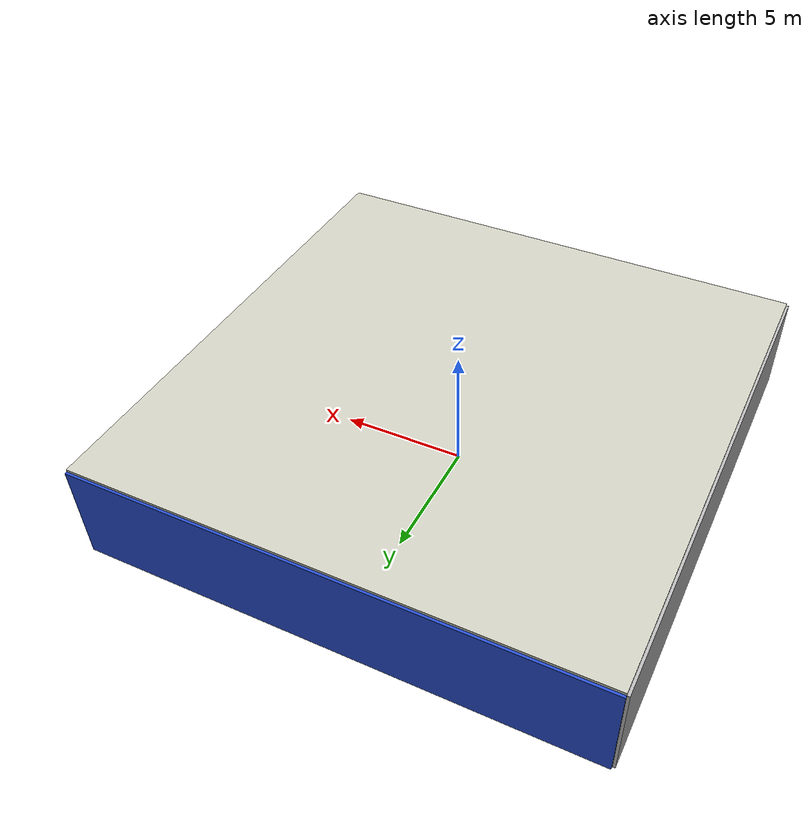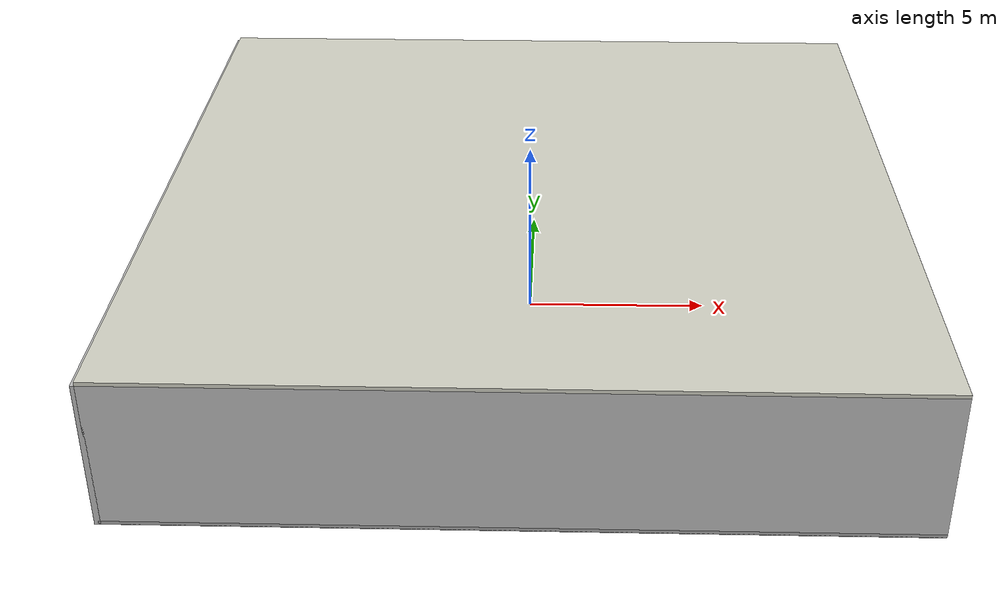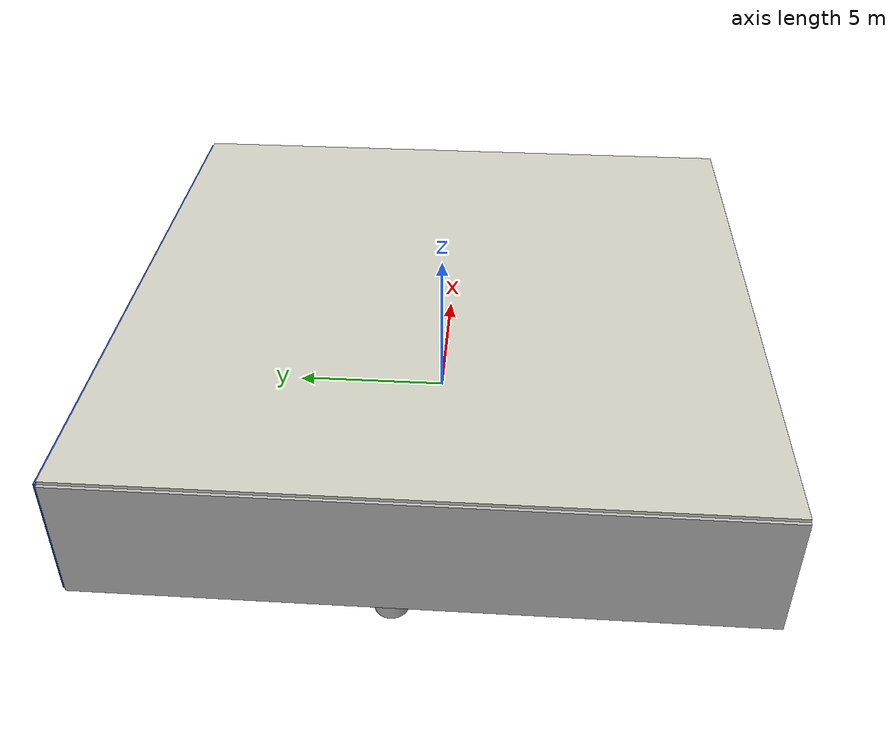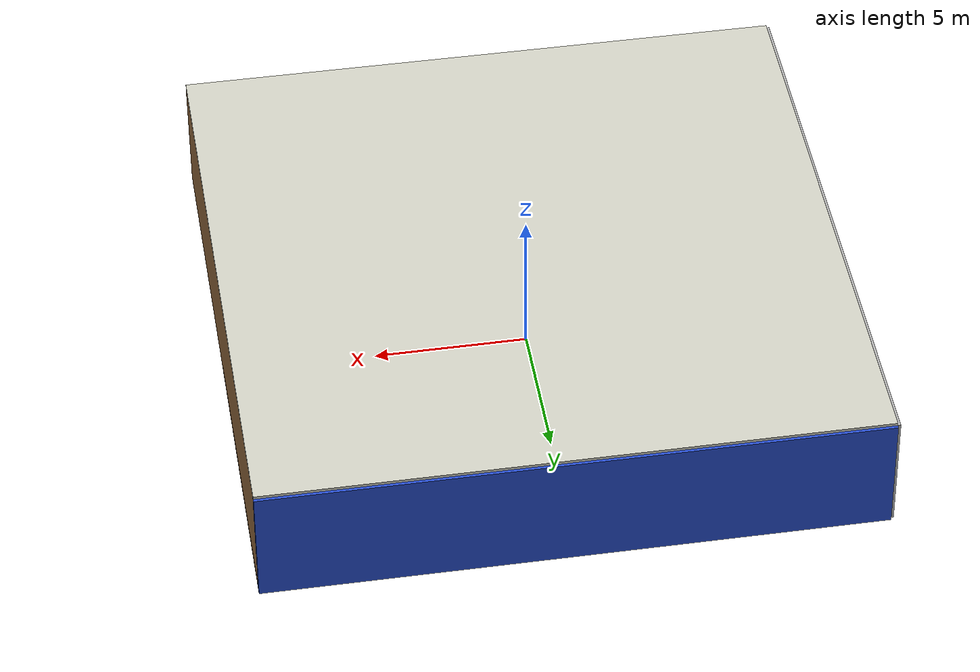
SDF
<sdf version="1.4">
 <world name="default">
  <physics type="ode">
   <max_step_size>0.001</max_step_size>
   <real_time_factor>1</real_time_factor>
   <real_time_update_rate>1000</real_time_update_rate>
   <gravity>0 0 -9.8</gravity>
  </physics>
  <scene><ambient>0.4 0.4 0.4 1</ambient><background>0.7 0.7 0.7 1</background><shadows>1</shadows></scene>
  <model name="Surrounding">
   <static>1</static>
   <link name="Ceiling">
    <collision name="Ceiling_Collision"><geometry><box><size>20 20 0.1</size></box></geometry></collision>
    <visual name="Ceiling_Visual">
     <geometry><box><size>20 20 0.1</size></box></geometry>
     <material>
      <script><uri>file://media/materials/scripts/gazebo.material</uri><name>Gazebo/PaintedWall</name></script>
     </material>
    </visual>
    <pose>0 0 4.05 0 0 0</pose>
   </link>
   <link name="Wall_South">
    <collision name="Wall_South_Collision">
     <geometry><box><size>20 0 4</size></box></geometry>
     <pose>0 0 2 0 -0 0</pose>
    </collision>
    <visual name="Wall_South_Visual">
     <pose>0 0 2 0 -0 0</pose>
     <geometry><box><size>20 0 4</size></box></geometry>
     <material>
      <script><uri>file://media/materials/scripts/gazebo.material</uri><name>Gazebo/Pioneer2Body</name></script>
     </material>
    </visual>
    <velocity_decay><linear>0</linear><angular>0</angular></velocity_decay>
    <pose>0 -10 0 0 -0 0</pose>
   </link>
   <link name="Wall_East">
    <collision name="Wall_21_Collision">
     <geometry><box><size>20 0 4</size></box></geometry>
     <pose>0 0 2 0 -0 0</pose>
    </collision>
    <visual name="Wall_21_Visual">
     <pose>0 0 2 0 -0 0</pose>
     <geometry><box><size>20 0 4</size></box></geometry>
     <material>
      <script><uri>file://media/materials/scripts/gazebo.material</uri><name>Gazebo/WoodFloor</name></script>
     </material>
    </visual>
    <velocity_decay><linear>0</linear><angular>0</angular></velocity_decay>
    <pose>10 0 0 0 -0 1.5708</pose>
   </link>
   <link name="Wall_North">
    <collision name="Wall_22_Collision">
     <geometry><box><size>20 0.2 4</size></box></geometry>
     <pose>0 0 2 0 -0 0</pose>
    </collision>
    <visual name="Wall_22_Visual">
     <pose>0 0 2 0 -0 0</pose>
     <geometry><box><size>20 0.2 4</size></box></geometry>
     <material>
      <script><uri>file://media/materials/scripts/gazebo.material</uri><name>Gazebo/Blue</name></script>
     </material>
    </visual>
    <velocity_decay><linear>0</linear><angular>0</angular></velocity_decay>
    <pose>0 10 0 0 -0 0</pose>
   </link>
   <link name="Wall_West">
    <collision name="Wall_23_Collision">
     <geometry><box><size>20 0.2 4</size></box></geometry>
     <pose>0 0 2 0 -0 0</pose>
    </collision>
    <visual name="Wall_23_Visual">
     <pose>0 0 2 0 -0 0</pose>
     <geometry><box><size>20 0.2 4</size></box></geometry>
     <material>
      <script><uri>file://media/materials/scripts/gazebo.material</uri><name>Gazebo/LightOn</name></script>
     </material>
    </visual>
    <velocity_decay><linear>0</linear><angular>0</angular></velocity_decay>
    <pose>-10 0 0 0 0 -1.5708</pose>
   </link>
   <link name="Ground_link">
    <collision name="collision">
     <pose>0 0 .05 0 -0 0</pose>
     <geometry><box><size>20 20 0.1</size></box></geometry>
    </collision>
    <visual name="visual">
     <pose>0 0 .05 0 -0 0</pose>
     <geometry><box><size>20 20 0.1</size></box></geometry>
     <material>
      <script><uri>file://media/materials/scripts/gazebo.material</uri><name>Gazebo/GreyTransparent</name></script>
     </material>
    </visual>
   </link>
   <static>1</static>
  </model>
  <spherical_coordinates>
   <surface_model>EARTH_WGS84</surface_model>
   <latitude_deg>0</latitude_deg>
   <longitude_deg>0</longitude_deg>
   <elevation>0</elevation>
   <heading_deg>0</heading_deg>
  </spherical_coordinates>
  <light name="lightball_0" type="diffuse">
   <diffuse>0.8 0.8 0.8 1</diffuse>
   <specular>0.2 0.2 0.2 1</specular>
   <attenuation>
    <range>100</range>
    <constant>0.7</constant>
    <linear>0.01</linear>
    <quadratic>0.001</quadratic>
   </attenuation>
   <direction>-0.5 0.1 -0.9</direction>
   <pose>-0.363760683277 -4.52852831838 1.54173577577 0 0 0</pose>
  </light>
  <light name="lightball_1" type="diffuse">
   <diffuse>0.8 0.8 0.8 1</diffuse>
   <specular>0.2 0.2 0.2 1</specular>
   <attenuation>
    <range>100</range>
    <constant>0.7</constant>
    <linear>0.01</linear>
    <quadratic>0.001</quadratic>
   </attenuation>
   <direction>-0.5 0.1 -0.9</direction>
   <pose>-1.44365556338 8.44990198244 0.929321581804 0 0 0</pose>
  </light>
  <light name="lightball_2" type="diffuse">
   <diffuse>0.8 0.8 0.8 1</diffuse>
   <specular>0.2 0.2 0.2 1</specular>
   <attenuation>
    <range>100</range>
    <constant>0.7</constant>
    <linear>0.01</linear>
    <quadratic>0.001</quadratic>
   </attenuation>
   <direction>-0.5 0.1 -0.9</direction>
   <pose>4.64524989165 -7.46915905002 3.15887033445 0 0 0</pose>
  </light>
  <light name="lightball_3" type="diffuse">
   <diffuse>0.8 0.8 0.8 1</diffuse>
   <specular>0.2 0.2 0.2 1</specular>
   <attenuation>
    <range>100</range>
    <constant>0.7</constant>
    <linear>0.01</linear>
    <quadratic>0.001</quadratic>
   </attenuation>
   <direction>-0.5 0.1 -0.9</direction>
   <pose>-7.07644667995 1.23054153907 3.45797828346 0 0 0</pose>
  </light>
  <light name="lightball_4" type="diffuse">
   <diffuse>0.8 0.8 0.8 1</diffuse>
   <specular>0.2 0.2 0.2 1</specular>
   <attenuation>
    <range>100</range>
    <constant>0.7</constant>
    <linear>0.01</linear>
    <quadratic>0.001</quadratic>
   </attenuation>
   <direction>-0.5 0.1 -0.9</direction>
   <pose>-0.396975707588 8.96343428287 2.44282593948 0 0 0</pose>
  </light>
  <light name="lightball_5" type="diffuse">
   <diffuse>0.8 0.8 0.8 1</diffuse>
   <specular>0.2 0.2 0.2 1</specular>
   <attenuation>
    <range>100</range>
    <constant>0.7</constant>
    <linear>0.01</linear>
    <quadratic>0.001</quadratic>
   </attenuation>
   <direction>-0.5 0.1 -0.9</direction>
   <pose>-3.1727309887 5.61785018756 3.33419654565 0 0 0</pose>
  </light>
  <light name="lightball_6" type="diffuse">
   <diffuse>0.8 0.8 0.8 1</diffuse>
   <specular>0.2 0.2 0.2 1</specular>
   <attenuation>
    <range>100</range>
    <constant>0.7</constant>
    <linear>0.01</linear>
    <quadratic>0.001</quadratic>
   </attenuation>
   <direction>-0.5 0.1 -0.9</direction>
   <pose>-6.72741213477 -3.33123714286 3.34099224472 0 0 0</pose>
  </light>
  <light name="lightball_7" type="diffuse">
   <diffuse>0.8 0.8 0.8 1</diffuse>
   <specular>0.2 0.2 0.2 1</specular>
   <attenuation>
    <range>100</range>
    <constant>0.7</constant>
    <linear>0.01</linear>
    <quadratic>0.001</quadratic>
   </attenuation>
   <direction>-0.5 0.1 -0.9</direction>
   <pose>-5.64252357487 -8.95151819064 0.965136122923 0 0 0</pose>
  </light>
  <light name="lightball_8" type="diffuse">
   <diffuse>0.8 0.8 0.8 1</diffuse>
   <specular>0.2 0.2 0.2 1</specular>
   <attenuation>
    <range>100</range>
    <constant>0.7</constant>
    <linear>0.01</linear>
    <quadratic>0.001</quadratic>
   </attenuation>
   <direction>-0.5 0.1 -0.9</direction>
   <pose>-4.10625179115 -4.42528616023 3.30822309363 0 0 0</pose>
  </light>
  <light name="lightball_9" type="diffuse">
   <diffuse>0.8 0.8 0.8 1</diffuse>
   <specular>0.2 0.2 0.2 1</specular>
   <attenuation>
    <range>100</range>
    <constant>0.7</constant>
    <linear>0.01</linear>
    <quadratic>0.001</quadratic>
   </attenuation>
   <direction>-0.5 0.1 -0.9</direction>
   <pose>-9.16826199146 -8.27428314775 2.700885182 0 0 0</pose>
  </light>
  <light name="lightball_10" type="diffuse">
   <diffuse>0.8 0.8 0.8 1</diffuse>
   <specular>0.2 0.2 0.2 1</specular>
   <attenuation>
    <range>100</range>
    <constant>0.7</constant>
    <linear>0.01</linear>
    <quadratic>0.001</quadratic>
   </attenuation>
   <direction>-0.5 0.1 -0.9</direction>
   <pose>1.08550234209 -7.09589289477 2.29875601559 0 0 0</pose>
  </light>
  <light name="lightball_11" type="diffuse">
   <diffuse>0.8 0.8 0.8 1</diffuse>
   <specular>0.2 0.2 0.2 1</specular>
   <attenuation>
    <range>100</range>
    <constant>0.7</constant>
    <linear>0.01</linear>
    <quadratic>0.001</quadratic>
   </attenuation>
   <direction>-0.5 0.1 -0.9</direction>
   <pose>8.69471414964 8.33574755346 0.831780512159 0 0 0</pose>
  </light>
  <light name="lightball_12" type="diffuse">
   <diffuse>0.8 0.8 0.8 1</diffuse>
   <specular>0.2 0.2 0.2 1</specular>
   <attenuation>
    <range>100</range>
    <constant>0.7</constant>
    <linear>0.01</linear>
    <quadratic>0.001</quadratic>
   </attenuation>
   <direction>-0.5 0.1 -0.9</direction>
   <pose>-1.03120471798 -6.56860111442 3.40514307188 0 0 0</pose>
  </light>
  <include><uri>model://table</uri><pose>-7.84148450429 -5.30340560675 0 0 0 1.18182616667</pose></include>
  <include>
   <uri>model://textured_shapes</uri>
   <pose>-8.09949572749 0.399685756145 0 0 0 1.30988708402</pose>
  </include>
  <include>
   <uri>model://robocup_3Dsim_goal</uri>
   <pose>-3.71821412714 7.54766132657 0 0 0 1.71897862204</pose>
  </include>
  <include><uri>model://cabinet</uri><pose>-0.664536190239 -5.01280473631 0 0 0 2.33326425793</pose></include>
  <include><uri>model://table</uri><pose>0.634574460819 3.55152395859 0 0 0 2.35623872724</pose></include>
  <include><uri>model://cabinet</uri><pose>6.87013075102 -6.80091883069 0 0 0 0.430352503707</pose></include>
 </world>
</sdf>

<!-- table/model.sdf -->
<sdf version="1.5">
  <model name="table">
    <static>true</static>
    <link name="link">
      <collision name="surface">
        <pose>0 0 1.0 0 0 0</pose>
        <geometry>
          <box>
            <size>1.5 0.8 0.03</size>
          </box>
        </geometry>
        <surface>
          <friction>
            <ode>
              <mu>0.6</mu>
              <mu2>0.6</mu2>
            </ode>
          </friction>
        </surface>
      </collision>
      <visual name="visual1">
        <pose>0 0 1.0 0 0 0</pose>
        <geometry>
          <box>
            <size>1.5 0.8 0.03</size>
          </box>
        </geometry>
        <material>
          <script>
            <uri>model://media/materials/scripts/gazebo.material</uri>
            <name>Gazebo/Wood</name>
          </script>
        </material>
      </visual>
      <collision name="front_left_leg">
        <pose>0.68 0.38 0.5 0 0 0</pose>
        <geometry>
          <cylinder>
            <radius>0.02</radius>
            <length>1.0</length>
          </cylinder>
        </geometry>
      </collision>
      <visual name="front_left_leg">
        <pose>0.68 0.38 0.5 0 0 0</pose>
        <geometry>
          <cylinder>
            <radius>0.02</radius>
            <length>1.0</length>
          </cylinder>
        </geometry>
        <material>
          <script>
            <uri>model://media/materials/scripts/gazebo.material</uri>
            <name>Gazebo/Grey</name>
          </script>
        </material>
      </visual>
      <collision name="front_right_leg">
        <pose>0.68 -0.38 0.5 0 0 0</pose>
        <geometry>
          <cylinder>
            <radius>0.02</radius>
            <length>1.0</length>
          </cylinder>
        </geometry>
      </collision>
      <visual name="front_right_leg">
        <pose>0.68 -0.38 0.5 0 0 0</pose>
        <geometry>
          <cylinder>
            <radius>0.02</radius>
            <length>1.0</length>
          </cylinder>
        </geometry>
        <material>
          <script>
            <uri>model://media/materials/scripts/gazebo.material</uri>
            <name>Gazebo/Grey</name>
          </script>
        </material>
      </visual>
      <collision name="back_right_leg">
        <pose>-0.68 -0.38 0.5 0 0 0</pose>
        <geometry>
          <cylinder>
            <radius>0.02</radius>
            <length>1.0</length>
          </cylinder>
        </geometry>
      </collision>
      <visual name="back_right_leg">
        <pose>-0.68 -0.38 0.5 0 0 0</pose>
        <geometry>
          <cylinder>
            <radius>0.02</radius>
            <length>1.0</length>
          </cylinder>
        </geometry>
        <material>
          <script>
            <uri>model://media/materials/scripts/gazebo.material</uri>
            <name>Gazebo/Grey</name>
          </script>
        </material>
      </visual>
      <collision name="back_left_leg">
        <pose>-0.68 0.38 0.5 0 0 0</pose>
        <geometry>
          <cylinder>
            <radius>0.02</radius>
            <length>1.0</length>
          </cylinder>
        </geometry>
      </collision>
      <visual name="back_left_leg">
        <pose>-0.68 0.38 0.5 0 0 0</pose>
        <geometry>
          <cylinder>
            <radius>0.02</radius>
            <length>1.0</length>
          </cylinder>
        </geometry>
        <material>
          <script>
            <uri>model://media/materials/scripts/gazebo.material</uri>
            <name>Gazebo/Grey</name>
          </script>
        </material>
      </visual>
    </link>
  </model>
</sdf>

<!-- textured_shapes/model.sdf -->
<sdf version="1.6">
  <model name="textured_shapes">
    <pose>0 0 0.5 0 0 0</pose>
    <link name="box">
      <pose>0 -1.5 0 0 0 0</pose>
      <collision name="collision">
        <geometry>
          <box>
            <size>1 1 1</size>
          </box>
        </geometry>
      </collision>
      <visual name="visual">
        <geometry>
          <box>
            <size>1 1 1</size>
          </box>
        </geometry>
        <material>
          <script>
            <uri>model://../model_source/models/textured_shapes/materials/scripts</uri>
            <uri>model://../model_source/models/textured_shapes/materials/textures</uri>
            <name>TexturedShape/Squares</name>
          </script>
        </material>
      </visual>
    </link>
    <link name="sphere">
      <collision name="collision">
        <geometry>
          <sphere>
            <radius>0.5</radius>
          </sphere>
        </geometry>
      </collision>
      <visual name="visual">
        <geometry>
          <sphere>
            <radius>0.5</radius>
          </sphere>
        </geometry>
        <material>
          <script>
            <uri>model://../model_source/models/textured_shapes/materials/scripts</uri>
            <uri>model://../model_source/models/textured_shapes/materials/textures</uri>
            <name>TexturedShape/Squares</name>
          </script>
        </material>
      </visual>
    </link>
    <link name="cylinder">
      <pose>0 1.5 0 0 0 0</pose>
      <collision name="collision">
        <geometry>
          <cylinder>
            <radius>0.5</radius>
            <length>1</length>
          </cylinder>
        </geometry>
      </collision>
      <visual name="visual">
        <geometry>
          <cylinder>
            <radius>0.5</radius>
            <length>1</length>
          </cylinder>
        </geometry>
        <material>
          <script>
            <uri>model://../model_source/models/textured_shapes/materials/scripts</uri>
            <uri>model://../model_source/models/textured_shapes/materials/textures</uri>
            <name>TexturedShape/Squares</name>
          </script>
        </material>
      </visual>
    </link>
  </model>
</sdf>

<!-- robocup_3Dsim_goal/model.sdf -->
<sdf version="1.5">
  <model name="robocup_3d_goal">
    <static>true</static>
    <link name="left_post">
      <pose>0 1.05 0.45 0 0 0</pose>
      <collision name="collision">
        <geometry>
          <cylinder>
            <radius>0.05</radius>
            <length>0.9</length>
          </cylinder>
        </geometry>
      </collision>
      <visual name="visual">
        <geometry>
          <cylinder>
            <radius>0.05</radius>
            <length>0.9</length>
          </cylinder>
        </geometry>
        <material>
          <script>
            <uri>file://media/materials/scripts/gazebo.material</uri>
            <name>Gazebo/ZincYellow</name>
          </script>
        </material>
      </visual>
    </link>
    <link name="left_support_horiz_lower">
      <pose>0.30 1.05 0.01 0 0 0</pose>
      <collision name="collision">
        <geometry>
          <box>
            <size>0.50 0.02 0.02</size>
          </box>
        </geometry>
      </collision>
      <visual name="visual">
        <geometry>
          <box>
            <size>0.50 0.02 0.02</size>
          </box>
        </geometry>
        <material>
          <script>
            <uri>file://media/materials/scripts/gazebo.material</uri>
            <name>Gazebo/White</name>
          </script>
        </material>
      </visual>
    </link>
    <link name="left_support_horiz_upper">
      <pose>0.30 1.05 0.79 0 0 0</pose>
      <collision name="collision">
        <geometry>
          <box>
            <size>0.50 0.02 0.02</size>
          </box>
        </geometry>
      </collision>
      <visual name="visual">
        <geometry>
          <box>
            <size>0.50 0.02 0.02</size>
          </box>
        </geometry>
        <material>
          <script>
            <uri>file://media/materials/scripts/gazebo.material</uri>
            <name>Gazebo/White</name>
          </script>
        </material>
      </visual>
    </link>
    <link name="left_support_vertical">
      <pose>0.56 1.05 0.4 0 1.5708 0</pose>
      <collision name="collision">
        <geometry>
          <box>
            <size>0.80 0.02 0.02</size>
          </box>
        </geometry>
      </collision>
      <visual name="visual">
        <geometry>
          <box>
            <size>0.80 0.02 0.02</size>
          </box>
        </geometry>
        <material>
          <script>
            <uri>file://media/materials/scripts/gazebo.material</uri>
            <name>Gazebo/White</name>
          </script>
        </material>
      </visual>
    </link>
    <link name="right_support_horiz_lower">
      <pose>0.30 -1.05 0.01 0 0 0</pose>
      <collision name="collision">
        <geometry>
          <box>
            <size>0.50 0.02 0.02</size>
          </box>
        </geometry>
      </collision>
      <visual name="visual">
        <geometry>
          <box>
            <size>0.50 0.02 0.02</size>
          </box>
        </geometry>
        <material>
          <script>
            <uri>file://media/materials/scripts/gazebo.material</uri>
            <name>Gazebo/White</name>
          </script>
        </material>
      </visual>
    </link>
    <link name="right_support_horiz_upper">
      <pose>0.30 -1.05 0.79 0 0 0</pose>
      <collision name="collision">
        <geometry>
          <box>
            <size>0.50 0.02 0.02</size>
          </box>
        </geometry>
      </collision>
      <visual name="visual">
        <geometry>
          <box>
            <size>0.50 0.02 0.02</size>
          </box>
        </geometry>
        <material>
          <script>
            <uri>file://media/materials/scripts/gazebo.material</uri>
            <name>Gazebo/White</name>
          </script>
        </material>
      </visual>
    </link>
    <link name="right_support_vertical">
      <pose>0.56 -1.05 0.4 0 1.5708 0</pose>
      <collision name="collision">
        <geometry>
          <box>
            <size>0.80 0.02 0.02</size>
          </box>
        </geometry>
      </collision>
      <visual name="visual">
        <geometry>
          <box>
            <size>0.80 0.02 0.02</size>
          </box>
        </geometry>
        <material>
          <script>
            <uri>file://media/materials/scripts/gazebo.material</uri>
            <name>Gazebo/White</name>
          </script>
        </material>
      </visual>
    </link>
    <link name="center_support_horiz_lower">
      <pose>0.56 0 0.01 0 1.5708 0</pose>
      <collision name="collision">
        <geometry>
          <box>
            <size>0.02 2.08 0.02</size>
          </box>
        </geometry>
      </collision>
      <visual name="visual">
        <geometry>
          <box>
            <size>0.02 2.08 0.02</size>
          </box>
        </geometry>
        <material>
          <script>
            <uri>file://media/materials/scripts/gazebo.material</uri>
            <name>Gazebo/White</name>
          </script>
        </material>
      </visual>
    </link>
    <link name="center_support_horiz_upper">
      <pose>0.56 0 0.79 0 1.5708 0</pose>
      <collision name="collision">
        <geometry>
          <box>
            <size>0.02 2.08 0.02</size>
          </box>
        </geometry>
      </collision>
      <visual name="visual">
        <geometry>
          <box>
            <size>0.02 2.08 0.02</size>
          </box>
        </geometry>
        <material>
          <script>
            <uri>file://media/materials/scripts/gazebo.material</uri>
            <name>Gazebo/White</name>
          </script>
        </material>
      </visual>
    </link>
    <link name="right_post">
      <pose>0 -1.05 0.45 0 0 0</pose>
      <collision name="collision">
        <geometry>
          <cylinder>
            <radius>0.05</radius>
            <length>0.9</length>
          </cylinder>
        </geometry>
      </collision>
      <visual name="visual">
        <geometry>
          <cylinder>
            <radius>0.05</radius>
            <length>0.9</length>
          </cylinder>
        </geometry>
        <material>
          <script>
            <uri>file://media/materials/scripts/gazebo.material</uri>
            <name>Gazebo/ZincYellow</name>
          </script>
        </material>
      </visual>
    </link>
    <link name="crossbar">
      <pose>0 0 0.85 1.57 1.57 0</pose>
      <collision name="collision">
        <geometry>
          <cylinder>
            <radius>0.05</radius>
            <length>2.0</length>
          </cylinder>
        </geometry>
      </collision>
      <visual name="visual">
        <geometry>
          <cylinder>
            <radius>0.05</radius>
            <length>2.0</length>
          </cylinder>
        </geometry>
        <material>
          <script>
            <uri>file://media/materials/scripts/gazebo.material</uri>
            <name>Gazebo/ZincYellow</name>
          </script>
        </material>
      </visual>
    </link>
    <link name="center_net">
      <pose>0.56 0 0.40 0 0 0</pose>
      <collision name="collision">
        <geometry>
          <box>
            <size>0.01 2.1 0.80</size>
          </box>
        </geometry>
      </collision>
      <visual name="visual">
        <geometry>
          <box>
            <size>0.01 2.1 0.80</size>
          </box>
        </geometry>
        <material>
          <script>
            <uri>model://../model_source/models/robocup09_spl_field/materials/scripts/</uri>
            <uri>model://../model_source/models/robocup09_spl_field/materials/textures/</uri>
            <name>RoboCup/Net</name>
          </script>
        </material>
      </visual>
    </link>
    <link name="left_net">
      <pose>0.30 1.05 0.40 0 0 0</pose>
      <collision name="collision">
        <geometry>
          <box>
            <size>0.50 0.01 0.76</size>
          </box>
        </geometry>
      </collision>
      <visual name="visual">
        <geometry>
          <box>
            <size>0.50 0.01 0.76</size>
          </box>
        </geometry>
        <material>
          <script>
            <uri>model://../model_source/models/robocup09_spl_field/materials/scripts/</uri>
            <uri>model://../model_source/models/robocup09_spl_field/materials/textures/</uri>
            <name>RoboCup/Net</name>
          </script>
        </material>
      </visual>
    </link>
    <link name="right_net">
      <pose>0.30 -1.05 0.40 0 0 0</pose>
      <collision name="collision">
        <geometry>
          <box>
            <size>0.50 0.01 0.76</size>
          </box>
        </geometry>
      </collision>
      <visual name="visual">
        <geometry>
          <box>
            <size>0.50 0.01 0.76</size>
          </box>
        </geometry>
        <material>
          <script>
            <uri>model://../model_source/models/robocup09_spl_field/materials/scripts/</uri>
            <uri>model://../model_source/models/robocup09_spl_field/materials/textures/</uri>
            <name>RoboCup/Net</name>
          </script>
        </material>
      </visual>
    </link>
  </model>
</sdf>

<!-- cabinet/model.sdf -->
<sdf version="1.5">
  <model name="cabinet">
    <static>true</static>
    <link name="cabinet_bottom_plate">
      <inertial>
        <pose>0 0 -1 0 0 0</pose>
        <inertia>
          <ixx>2.050000</ixx>
          <ixy>0</ixy>
          <ixz>0</ixz>
          <iyy>2.050000</iyy>
          <iyz>0</iyz>
          <izz>2.050000</izz>
        </inertia>
        <mass>25.000000</mass>
      </inertial>
      <collision name="cabinet_bottom_plate_geom">
        <pose>0 0 0.010000 0 0 0</pose>
        <geometry>
          <box>
            <size>0.450000 0.450000 0.020000</size>
          </box>
        </geometry>
      </collision>
      <visual name="cabinet_bottom_plate_geom_visual">
        <pose>0 0 0.010000 0 0 0</pose>
        <geometry>
          <box>
            <size>0.450000 0.450000 0.020000</size>
          </box>
        </geometry>
        <material>
          <script>
            <uri>model://media/materials/scripts/gazebo.material</uri>
            <name>Gazebo/Wood</name>
          </script>
        </material>
      </visual>
      <collision name="cabinet_bottom_plate_geom_cabinet_back_plate">
        <pose>0.235000 0 0.510000 0 0 0</pose>
        <geometry>
          <box>
            <size>0.020000 0.450000 1.020000</size>
          </box>
        </geometry>
      </collision>
      <visual name="cabinet_bottom_plate_geom_cabinet_back_plate_visual">
        <pose>0.235000 0 0.510000 0 0 0</pose>
        <geometry>
          <box>
            <size>0.020000 0.450000 1.020000</size>
          </box>
        </geometry>
        <material>
          <script>
            <uri>model://media/materials/scripts/gazebo.material</uri>
            <name>Gazebo/Wood</name>
          </script>
        </material>
      </visual>
      <collision name="cabinet_bottom_plate_geom_cabinet_left_plate">
        <pose>0 0.235000 0.510000 0 0 0</pose>
        <geometry>
          <box>
            <size>0.450000 0.020000 1.020000</size>
          </box>
        </geometry>
      </collision>
      <visual name="cabinet_bottom_plate_geom_cabinet_left_plate_visual">
        <pose>0 0.235000 0.510000 0 0 0</pose>
        <geometry>
          <box>
            <size>0.450000 0.020000 1.020000</size>
          </box>
        </geometry>
        <material>
          <script>
            <uri>model://media/materials/scripts/gazebo.material</uri>
            <name>Gazebo/Wood</name>
          </script>
        </material>
      </visual>
      <collision name="cabinet_bottom_plate_geom_cabinet_middle_plate">
        <pose>0 0 0.510000 0 0 0</pose>
        <geometry>
          <box>
            <size>0.450000 0.450000 0.020000</size>
          </box>
        </geometry>
      </collision>
      <visual name="cabinet_bottom_plate_geom_cabinet_middle_plate_visual">
        <pose>0 0 0.510000 0 0 0</pose>
        <geometry>
          <box>
            <size>0.450000 0.450000 0.020000</size>
          </box>
        </geometry>
        <material>
          <script>
            <uri>model://media/materials/scripts/gazebo.material</uri>
            <name>Gazebo/Wood</name>
          </script>
        </material>
      </visual>
      <collision name="cabinet_bottom_plate_geom_cabinet_right_plate">
        <pose>0 -0.235000 0.510000 0 0 0</pose>
        <geometry>
          <box>
            <size>0.450000 0.020000 1.020000</size>
          </box>
        </geometry>
      </collision>
      <visual name="cabinet_bottom_plate_geom_cabinet_right_plate_visual">
        <pose>0 -0.235000 0.510000 0 0 0</pose>
        <geometry>
          <box>
            <size>0.450000 0.020000 1.020000</size>
          </box>
        </geometry>
        <material>
          <script>
            <uri>model://media/materials/scripts/gazebo.material</uri>
            <name>Gazebo/Wood</name>
          </script>
        </material>
      </visual>
      <collision name="cabinet_bottom_plate_geom_cabinet_top_plate">
        <pose>0 0 1.010000 0 0 0</pose>
        <geometry>
          <box>
            <size>0.450000 0.450000 0.020000</size>
          </box>
        </geometry>
      </collision>
      <visual name="cabinet_bottom_plate_geom_cabinet_top_plate_visual">
        <pose>0 0 1.010000 0 0 0</pose>
        <geometry>
          <box>
            <size>0.450000 0.450000 0.020000</size>
          </box>
        </geometry>
        <material>
          <script>
            <uri>model://media/materials/scripts/gazebo.material</uri>
            <name>Gazebo/Wood</name>
          </script>
        </material>
      </visual>
    </link>
  </model>
</sdf>
